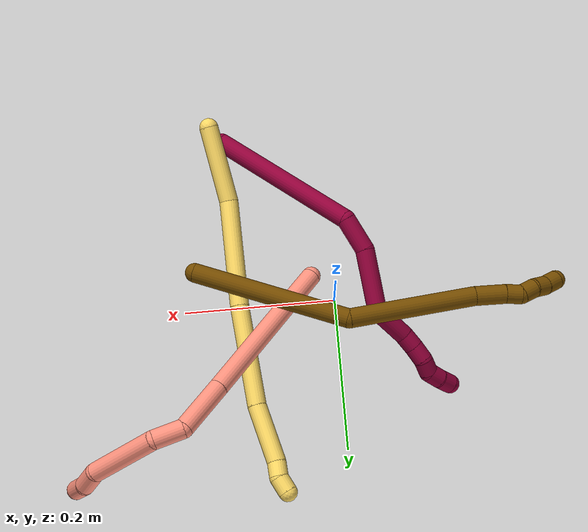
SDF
<sdf version="1.7">
 <world name="default">
  <model name="5">
   <static>0</static>
   <link name="5">
    <collision name="collision-cylinder-e_1_1_4">
     <pose>-0.01694 0.032761 -0.035222 -2.39238 -0.338606 0.820235</pose>
     <geometry><cylinder><radius>0.0125</radius><length>0.101998</length></cylinder></geometry>
     <surface>
      <friction><ode><mu>1.16</mu><mu2>1.16</mu2><slip1>0</slip1><slip2>0</slip2></ode></friction>
      <contact><ode><kp>1e+06</kp><kd>1</kd><max_vel>0</max_vel><min_depth>0.001</min_depth></ode></contact>
     </surface>
    </collision>
    <visual name="visual-cylinder-e_1_1_4">
     <pose>-0.01694 0.032761 -0.035222 -2.39238 -0.338606 0.820235</pose>
     <geometry><cylinder><radius>0.0125</radius><length>0.101998</length></cylinder></geometry>
     <material><ambient>1 0.858824 0.4 1</ambient></material>
    </visual>
    <collision name="collision-cylinder-e_2_4_5">
     <pose>-0.040436 0.119108 -0.117203 -2.28826 -0.09192 0.201661</pose>
     <geometry><cylinder><radius>0.0125</radius><length>0.142839</length></cylinder></geometry>
     <surface>
      <friction><ode><mu>1.16</mu><mu2>1.16</mu2><slip1>0</slip1><slip2>0</slip2></ode></friction>
      <contact><ode><kp>1e+06</kp><kd>1</kd><max_vel>0</max_vel><min_depth>0.001</min_depth></ode></contact>
     </surface>
    </collision>
    <visual name="visual-cylinder-e_2_4_5">
     <pose>-0.040436 0.119108 -0.117203 -2.28826 -0.09192 0.201661</pose>
     <geometry><cylinder><radius>0.0125</radius><length>0.142839</length></cylinder></geometry>
     <material><ambient>1 0.858824 0.4 1</ambient></material>
    </visual>
    <collision name="collision-cylinder-e_3_5_6">
     <pose>-0.056448 0.224978 -0.204864 -2.23465 -0.141493 0.288797</pose>
     <geometry><cylinder><radius>0.0125</radius><length>0.134105</length></cylinder></geometry>
     <surface>
      <friction><ode><mu>1.16</mu><mu2>1.16</mu2><slip1>0</slip1><slip2>0</slip2></ode></friction>
      <contact><ode><kp>1e+06</kp><kd>1</kd><max_vel>0</max_vel><min_depth>0.001</min_depth></ode></contact>
     </surface>
    </collision>
    <visual name="visual-cylinder-e_3_5_6">
     <pose>-0.056448 0.224978 -0.204864 -2.23465 -0.141493 0.288797</pose>
     <geometry><cylinder><radius>0.0125</radius><length>0.134105</length></cylinder></geometry>
     <material><ambient>1 0.858824 0.4 1</ambient></material>
    </visual>
    <collision name="collision-cylinder-e_4_6_7">
     <pose>-0.07549 0.310032 -0.265042 -2.10251 -0.246999 0.427435</pose>
     <geometry><cylinder><radius>0.0125</radius><length>0.078418</length></cylinder></geometry>
     <surface>
      <friction><ode><mu>1.16</mu><mu2>1.16</mu2><slip1>0</slip1><slip2>0</slip2></ode></friction>
      <contact><ode><kp>1e+06</kp><kd>1</kd><max_vel>0</max_vel><min_depth>0.001</min_depth></ode></contact>
     </surface>
    </collision>
    <visual name="visual-cylinder-e_4_6_7">
     <pose>-0.07549 0.310032 -0.265042 -2.10251 -0.246999 0.427435</pose>
     <geometry><cylinder><radius>0.0125</radius><length>0.078418</length></cylinder></geometry>
     <material><ambient>1 0.858824 0.4 1</ambient></material>
    </visual>
    <collision name="collision-cylinder-e_5_7_8">
     <pose>-0.085425 0.351794 -0.289619 -2.10351 -0.033386 0.058429</pose>
     <geometry><cylinder><radius>0.0125</radius><length>0.020888</length></cylinder></geometry>
     <surface>
      <friction><ode><mu>1.16</mu><mu2>1.16</mu2><slip1>0</slip1><slip2>0</slip2></ode></friction>
      <contact><ode><kp>1e+06</kp><kd>1</kd><max_vel>0</max_vel><min_depth>0.001</min_depth></ode></contact>
     </surface>
    </collision>
    <visual name="visual-cylinder-e_5_7_8">
     <pose>-0.085425 0.351794 -0.289619 -2.10351 -0.033386 0.058429</pose>
     <geometry><cylinder><radius>0.0125</radius><length>0.020888</length></cylinder></geometry>
     <material><ambient>1 0.858824 0.4 1</ambient></material>
    </visual>
    <collision name="collision-cylinder-e_6_8_2">
     <pose>-0.090472 0.369715 -0.29898 -1.99752 -0.446634 0.678215</pose>
     <geometry><cylinder><radius>0.0125</radius><length>0.021753</length></cylinder></geometry>
     <surface>
      <friction><ode><mu>1.16</mu><mu2>1.16</mu2><slip1>0</slip1><slip2>0</slip2></ode></friction>
      <contact><ode><kp>1e+06</kp><kd>1</kd><max_vel>0</max_vel><min_depth>0.001</min_depth></ode></contact>
     </surface>
    </collision>
    <visual name="visual-cylinder-e_6_8_2">
     <pose>-0.090472 0.369715 -0.29898 -1.99752 -0.446634 0.678215</pose>
     <geometry><cylinder><radius>0.0125</radius><length>0.021753</length></cylinder></geometry>
     <material><ambient>1 0.858824 0.4 1</ambient></material>
    </visual>
    <collision name="collision-sphere-2">
     <pose>-0.09517 0.378645 -0.303041 0 -0 0</pose>
     <geometry><sphere><radius>0.0125</radius></sphere></geometry>
     <surface>
      <friction><ode><mu>1.16</mu><mu2>1.16</mu2><slip1>0</slip1><slip2>0</slip2></ode></friction>
      <contact><ode><kp>1e+06</kp><kd>1</kd><max_vel>0</max_vel><min_depth>0.001</min_depth></ode></contact>
     </surface>
    </collision>
    <visual name="visual-sphere-2">
     <pose>-0.09517 0.378645 -0.303041 0 -0 0</pose>
     <geometry><sphere><radius>0.0125</radius></sphere></geometry>
     <material><ambient>1 0.858824 0.4 1</ambient></material>
    </visual>
    <collision name="collision-sphere-4">
     <pose>-0.033881 0.065522 -0.070445 0 -0 0</pose>
     <geometry><sphere><radius>0.0125</radius></sphere></geometry>
     <surface>
      <friction><ode><mu>1.16</mu><mu2>1.16</mu2><slip1>0</slip1><slip2>0</slip2></ode></friction>
      <contact><ode><kp>1e+06</kp><kd>1</kd><max_vel>0</max_vel><min_depth>0.001</min_depth></ode></contact>
     </surface>
    </collision>
    <visual name="visual-sphere-4">
     <pose>-0.033881 0.065522 -0.070445 0 -0 0</pose>
     <geometry><sphere><radius>0.0125</radius></sphere></geometry>
     <material><ambient>1 0.858824 0.4 1</ambient></material>
    </visual>
    <collision name="collision-sphere-1">
     <geometry><sphere><radius>0.0125</radius></sphere></geometry>
     <surface>
      <friction><ode><mu>1.16</mu><mu2>1.16</mu2><slip1>0</slip1><slip2>0</slip2></ode></friction>
      <contact><ode><kp>1e+06</kp><kd>1</kd><max_vel>0</max_vel><min_depth>0.001</min_depth></ode></contact>
     </surface>
    </collision>
    <visual name="visual-sphere-1">
     <geometry><sphere><radius>0.0125</radius></sphere></geometry>
     <material><ambient>1 0.858824 0.4 1</ambient></material>
    </visual>
    <collision name="collision-sphere-8">
     <pose>-0.085774 0.360785 -0.29492 0 -0 0</pose>
     <geometry><sphere><radius>0.0125</radius></sphere></geometry>
     <surface>
      <friction><ode><mu>1.16</mu><mu2>1.16</mu2><slip1>0</slip1><slip2>0</slip2></ode></friction>
      <contact><ode><kp>1e+06</kp><kd>1</kd><max_vel>0</max_vel><min_depth>0.001</min_depth></ode></contact>
     </surface>
    </collision>
    <visual name="visual-sphere-8">
     <pose>-0.085774 0.360785 -0.29492 0 -0 0</pose>
     <geometry><sphere><radius>0.0125</radius></sphere></geometry>
     <material><ambient>1 0.858824 0.4 1</ambient></material>
    </visual>
    <collision name="collision-sphere-5">
     <pose>-0.046992 0.172693 -0.163962 0 -0 0</pose>
     <geometry><sphere><radius>0.0125</radius></sphere></geometry>
     <surface>
      <friction><ode><mu>1.16</mu><mu2>1.16</mu2><slip1>0</slip1><slip2>0</slip2></ode></friction>
      <contact><ode><kp>1e+06</kp><kd>1</kd><max_vel>0</max_vel><min_depth>0.001</min_depth></ode></contact>
     </surface>
    </collision>
    <visual name="visual-sphere-5">
     <pose>-0.046992 0.172693 -0.163962 0 -0 0</pose>
     <geometry><sphere><radius>0.0125</radius></sphere></geometry>
     <material><ambient>1 0.858824 0.4 1</ambient></material>
    </visual>
    <collision name="collision-sphere-6">
     <pose>-0.065904 0.277262 -0.245766 0 -0 0</pose>
     <geometry><sphere><radius>0.0125</radius></sphere></geometry>
     <surface>
      <friction><ode><mu>1.16</mu><mu2>1.16</mu2><slip1>0</slip1><slip2>0</slip2></ode></friction>
      <contact><ode><kp>1e+06</kp><kd>1</kd><max_vel>0</max_vel><min_depth>0.001</min_depth></ode></contact>
     </surface>
    </collision>
    <visual name="visual-sphere-6">
     <pose>-0.065904 0.277262 -0.245766 0 -0 0</pose>
     <geometry><sphere><radius>0.0125</radius></sphere></geometry>
     <material><ambient>1 0.858824 0.4 1</ambient></material>
    </visual>
    <collision name="collision-sphere-7">
     <pose>-0.085077 0.342802 -0.284318 0 -0 0</pose>
     <geometry><sphere><radius>0.0125</radius></sphere></geometry>
     <surface>
      <friction><ode><mu>1.16</mu><mu2>1.16</mu2><slip1>0</slip1><slip2>0</slip2></ode></friction>
      <contact><ode><kp>1e+06</kp><kd>1</kd><max_vel>0</max_vel><min_depth>0.001</min_depth></ode></contact>
     </surface>
    </collision>
    <visual name="visual-sphere-7">
     <pose>-0.085077 0.342802 -0.284318 0 -0 0</pose>
     <geometry><sphere><radius>0.0125</radius></sphere></geometry>
     <material><ambient>1 0.858824 0.4 1</ambient></material>
    </visual>
    <inertial>
     <pose>-0.049492 0.180456 -0.162288 0 -0 0</pose>
     <mass>0.5</mass>
     <inertia>
      <ixx>0.000721</ixx>
      <ixy>0</ixy>
      <ixz>0</ixz>
      <iyy>-0.0001</iyy>
      <iyz>0</iyz>
      <izz>-0.000375</izz>
     </inertia>
    </inertial>
   </link>
   <pose>0.146261 -0.240816 0.042338 0.84985 -0.553889 -0.127405</pose>
  </model>
  <model name="8">
   <static>0</static>
   <link name="8">
    <collision name="collision-cylinder-e_1_1_4">
     <pose>-0.048755 0.095685 -0.025963 -1.83576 -0.457029 0.590416</pose>
     <geometry><cylinder><radius>0.0125</radius><length>0.220969</length></cylinder></geometry>
     <surface>
      <friction><ode><mu>1.16</mu><mu2>1.16</mu2><slip1>0</slip1><slip2>0</slip2></ode></friction>
      <contact><ode><kp>1e+06</kp><kd>1</kd><max_vel>0</max_vel><min_depth>0.001</min_depth></ode></contact>
     </surface>
    </collision>
    <visual name="visual-cylinder-e_1_1_4">
     <pose>-0.048755 0.095685 -0.025963 -1.83576 -0.457029 0.590416</pose>
     <geometry><cylinder><radius>0.0125</radius><length>0.220969</length></cylinder></geometry>
     <material><ambient>0.584314 0 0.227451 1</ambient></material>
    </visual>
    <collision name="collision-cylinder-e_2_4_5">
     <pose>-0.102914 0.205732 -0.069167 -2.44707 -0.236325 0.633906</pose>
     <geometry><cylinder><radius>0.0125</radius><length>0.046161</length></cylinder></geometry>
     <surface>
      <friction><ode><mu>1.16</mu><mu2>1.16</mu2><slip1>0</slip1><slip2>0</slip2></ode></friction>
      <contact><ode><kp>1e+06</kp><kd>1</kd><max_vel>0</max_vel><min_depth>0.001</min_depth></ode></contact>
     </surface>
    </collision>
    <visual name="visual-cylinder-e_2_4_5">
     <pose>-0.102914 0.205732 -0.069167 -2.44707 -0.236325 0.633906</pose>
     <geometry><cylinder><radius>0.0125</radius><length>0.046161</length></cylinder></geometry>
     <material><ambient>0.584314 0 0.227451 1</ambient></material>
    </visual>
    <collision name="collision-cylinder-e_3_5_6">
     <pose>-0.10416 0.242481 -0.119443 -2.54598 0.10382 -0.33537</pose>
     <geometry><cylinder><radius>0.0125</radius><length>0.080243</length></cylinder></geometry>
     <surface>
      <friction><ode><mu>1.16</mu><mu2>1.16</mu2><slip1>0</slip1><slip2>0</slip2></ode></friction>
      <contact><ode><kp>1e+06</kp><kd>1</kd><max_vel>0</max_vel><min_depth>0.001</min_depth></ode></contact>
     </surface>
    </collision>
    <visual name="visual-cylinder-e_3_5_6">
     <pose>-0.10416 0.242481 -0.119443 -2.54598 0.10382 -0.33537</pose>
     <geometry><cylinder><radius>0.0125</radius><length>0.080243</length></cylinder></geometry>
     <material><ambient>0.584314 0 0.227451 1</ambient></material>
    </visual>
    <collision name="collision-cylinder-e_4_6_7">
     <pose>-0.113793 0.271518 -0.172381 -2.81919 -0.581382 2.14584</pose>
     <geometry><cylinder><radius>0.0125</radius><length>0.050224</length></cylinder></geometry>
     <surface>
      <friction><ode><mu>1.16</mu><mu2>1.16</mu2><slip1>0</slip1><slip2>0</slip2></ode></friction>
      <contact><ode><kp>1e+06</kp><kd>1</kd><max_vel>0</max_vel><min_depth>0.001</min_depth></ode></contact>
     </surface>
    </collision>
    <visual name="visual-cylinder-e_4_6_7">
     <pose>-0.113793 0.271518 -0.172381 -2.81919 -0.581382 2.14584</pose>
     <geometry><cylinder><radius>0.0125</radius><length>0.050224</length></cylinder></geometry>
     <material><ambient>0.584314 0 0.227451 1</ambient></material>
    </visual>
    <collision name="collision-cylinder-e_5_7_8">
     <pose>-0.131792 0.282702 -0.200354 -2.62958 -0.426712 1.38281</pose>
     <geometry><cylinder><radius>0.0125</radius><length>0.020332</length></cylinder></geometry>
     <surface>
      <friction><ode><mu>1.16</mu><mu2>1.16</mu2><slip1>0</slip1><slip2>0</slip2></ode></friction>
      <contact><ode><kp>1e+06</kp><kd>1</kd><max_vel>0</max_vel><min_depth>0.001</min_depth></ode></contact>
     </surface>
    </collision>
    <visual name="visual-cylinder-e_5_7_8">
     <pose>-0.131792 0.282702 -0.200354 -2.62958 -0.426712 1.38281</pose>
     <geometry><cylinder><radius>0.0125</radius><length>0.020332</length></cylinder></geometry>
     <material><ambient>0.584314 0 0.227451 1</ambient></material>
    </visual>
    <collision name="collision-cylinder-e_6_8_9">
     <pose>-0.139773 0.292646 -0.21716 -2.58721 -0.3519 1.11702</pose>
     <geometry><cylinder><radius>0.0125</radius><length>0.021898</length></cylinder></geometry>
     <surface>
      <friction><ode><mu>1.16</mu><mu2>1.16</mu2><slip1>0</slip1><slip2>0</slip2></ode></friction>
      <contact><ode><kp>1e+06</kp><kd>1</kd><max_vel>0</max_vel><min_depth>0.001</min_depth></ode></contact>
     </surface>
    </collision>
    <visual name="visual-cylinder-e_6_8_9">
     <pose>-0.139773 0.292646 -0.21716 -2.58721 -0.3519 1.11702</pose>
     <geometry><cylinder><radius>0.0125</radius><length>0.021898</length></cylinder></geometry>
     <material><ambient>0.584314 0 0.227451 1</ambient></material>
    </visual>
    <collision name="collision-cylinder-e_7_9_10">
     <pose>-0.145697 0.300114 -0.235515 -2.93088 -0.21523 1.59219</pose>
     <geometry><cylinder><radius>0.0125</radius><length>0.020131</length></cylinder></geometry>
     <surface>
      <friction><ode><mu>1.16</mu><mu2>1.16</mu2><slip1>0</slip1><slip2>0</slip2></ode></friction>
      <contact><ode><kp>1e+06</kp><kd>1</kd><max_vel>0</max_vel><min_depth>0.001</min_depth></ode></contact>
     </surface>
    </collision>
    <visual name="visual-cylinder-e_7_9_10">
     <pose>-0.145697 0.300114 -0.235515 -2.93088 -0.21523 1.59219</pose>
     <geometry><cylinder><radius>0.0125</radius><length>0.020131</length></cylinder></geometry>
     <material><ambient>0.584314 0 0.227451 1</ambient></material>
    </visual>
    <collision name="collision-cylinder-e_8_10_11">
     <pose>-0.154707 0.303452 -0.252318 -2.96506 -0.754263 2.70197</pose>
     <geometry><cylinder><radius>0.0125</radius><length>0.020038</length></cylinder></geometry>
     <surface>
      <friction><ode><mu>1.16</mu><mu2>1.16</mu2><slip1>0</slip1><slip2>0</slip2></ode></friction>
      <contact><ode><kp>1e+06</kp><kd>1</kd><max_vel>0</max_vel><min_depth>0.001</min_depth></ode></contact>
     </surface>
    </collision>
    <visual name="visual-cylinder-e_8_10_11">
     <pose>-0.154707 0.303452 -0.252318 -2.96506 -0.754263 2.70197</pose>
     <geometry><cylinder><radius>0.0125</radius><length>0.020038</length></cylinder></geometry>
     <material><ambient>0.584314 0 0.227451 1</ambient></material>
    </visual>
    <collision name="collision-cylinder-e_9_11_2">
     <pose>-0.168643 0.304435 -0.266569 3.09917 -0.785879 -3.03932</pose>
     <geometry><cylinder><radius>0.0125</radius><length>0.020004</length></cylinder></geometry>
     <surface>
      <friction><ode><mu>1.16</mu><mu2>1.16</mu2><slip1>0</slip1><slip2>0</slip2></ode></friction>
      <contact><ode><kp>1e+06</kp><kd>1</kd><max_vel>0</max_vel><min_depth>0.001</min_depth></ode></contact>
     </surface>
    </collision>
    <visual name="visual-cylinder-e_9_11_2">
     <pose>-0.168643 0.304435 -0.266569 3.09917 -0.785879 -3.03932</pose>
     <geometry><cylinder><radius>0.0125</radius><length>0.020004</length></cylinder></geometry>
     <material><ambient>0.584314 0 0.227451 1</ambient></material>
    </visual>
    <collision name="collision-sphere-2">
     <pose>-0.175719 0.304135 -0.273632 0 -0 0</pose>
     <geometry><sphere><radius>0.0125</radius></sphere></geometry>
     <surface>
      <friction><ode><mu>1.16</mu><mu2>1.16</mu2><slip1>0</slip1><slip2>0</slip2></ode></friction>
      <contact><ode><kp>1e+06</kp><kd>1</kd><max_vel>0</max_vel><min_depth>0.001</min_depth></ode></contact>
     </surface>
    </collision>
    <visual name="visual-sphere-2">
     <pose>-0.175719 0.304135 -0.273632 0 -0 0</pose>
     <geometry><sphere><radius>0.0125</radius></sphere></geometry>
     <material><ambient>0.584314 0 0.227451 1</ambient></material>
    </visual>
    <collision name="collision-sphere-11">
     <pose>-0.161567 0.304735 -0.259506 0 -0 0</pose>
     <geometry><sphere><radius>0.0125</radius></sphere></geometry>
     <surface>
      <friction><ode><mu>1.16</mu><mu2>1.16</mu2><slip1>0</slip1><slip2>0</slip2></ode></friction>
      <contact><ode><kp>1e+06</kp><kd>1</kd><max_vel>0</max_vel><min_depth>0.001</min_depth></ode></contact>
     </surface>
    </collision>
    <visual name="visual-sphere-11">
     <pose>-0.161567 0.304735 -0.259506 0 -0 0</pose>
     <geometry><sphere><radius>0.0125</radius></sphere></geometry>
     <material><ambient>0.584314 0 0.227451 1</ambient></material>
    </visual>
    <collision name="collision-sphere-10">
     <pose>-0.147846 0.30217 -0.24513 0 -0 0</pose>
     <geometry><sphere><radius>0.0125</radius></sphere></geometry>
     <surface>
      <friction><ode><mu>1.16</mu><mu2>1.16</mu2><slip1>0</slip1><slip2>0</slip2></ode></friction>
      <contact><ode><kp>1e+06</kp><kd>1</kd><max_vel>0</max_vel><min_depth>0.001</min_depth></ode></contact>
     </surface>
    </collision>
    <visual name="visual-sphere-10">
     <pose>-0.147846 0.30217 -0.24513 0 -0 0</pose>
     <geometry><sphere><radius>0.0125</radius></sphere></geometry>
     <material><ambient>0.584314 0 0.227451 1</ambient></material>
    </visual>
    <collision name="collision-sphere-9">
     <pose>-0.143547 0.298057 -0.225899 0 -0 0</pose>
     <geometry><sphere><radius>0.0125</radius></sphere></geometry>
     <surface>
      <friction><ode><mu>1.16</mu><mu2>1.16</mu2><slip1>0</slip1><slip2>0</slip2></ode></friction>
      <contact><ode><kp>1e+06</kp><kd>1</kd><max_vel>0</max_vel><min_depth>0.001</min_depth></ode></contact>
     </surface>
    </collision>
    <visual name="visual-sphere-9">
     <pose>-0.143547 0.298057 -0.225899 0 -0 0</pose>
     <geometry><sphere><radius>0.0125</radius></sphere></geometry>
     <material><ambient>0.584314 0 0.227451 1</ambient></material>
    </visual>
    <collision name="collision-sphere-4">
     <pose>-0.09751 0.191371 -0.051926 0 -0 0</pose>
     <geometry><sphere><radius>0.0125</radius></sphere></geometry>
     <surface>
      <friction><ode><mu>1.16</mu><mu2>1.16</mu2><slip1>0</slip1><slip2>0</slip2></ode></friction>
      <contact><ode><kp>1e+06</kp><kd>1</kd><max_vel>0</max_vel><min_depth>0.001</min_depth></ode></contact>
     </surface>
    </collision>
    <visual name="visual-sphere-4">
     <pose>-0.09751 0.191371 -0.051926 0 -0 0</pose>
     <geometry><sphere><radius>0.0125</radius></sphere></geometry>
     <material><ambient>0.584314 0 0.227451 1</ambient></material>
    </visual>
    <collision name="collision-sphere-1">
     <geometry><sphere><radius>0.0125</radius></sphere></geometry>
     <surface>
      <friction><ode><mu>1.16</mu><mu2>1.16</mu2><slip1>0</slip1><slip2>0</slip2></ode></friction>
      <contact><ode><kp>1e+06</kp><kd>1</kd><max_vel>0</max_vel><min_depth>0.001</min_depth></ode></contact>
     </surface>
    </collision>
    <visual name="visual-sphere-1">
     <geometry><sphere><radius>0.0125</radius></sphere></geometry>
     <material><ambient>0.584314 0 0.227451 1</ambient></material>
    </visual>
    <collision name="collision-sphere-8">
     <pose>-0.135999 0.287236 -0.208422 0 -0 0</pose>
     <geometry><sphere><radius>0.0125</radius></sphere></geometry>
     <surface>
      <friction><ode><mu>1.16</mu><mu2>1.16</mu2><slip1>0</slip1><slip2>0</slip2></ode></friction>
      <contact><ode><kp>1e+06</kp><kd>1</kd><max_vel>0</max_vel><min_depth>0.001</min_depth></ode></contact>
     </surface>
    </collision>
    <visual name="visual-sphere-8">
     <pose>-0.135999 0.287236 -0.208422 0 -0 0</pose>
     <geometry><sphere><radius>0.0125</radius></sphere></geometry>
     <material><ambient>0.584314 0 0.227451 1</ambient></material>
    </visual>
    <collision name="collision-sphere-5">
     <pose>-0.108318 0.220093 -0.086409 0 -0 0</pose>
     <geometry><sphere><radius>0.0125</radius></sphere></geometry>
     <surface>
      <friction><ode><mu>1.16</mu><mu2>1.16</mu2><slip1>0</slip1><slip2>0</slip2></ode></friction>
      <contact><ode><kp>1e+06</kp><kd>1</kd><max_vel>0</max_vel><min_depth>0.001</min_depth></ode></contact>
     </surface>
    </collision>
    <visual name="visual-sphere-5">
     <pose>-0.108318 0.220093 -0.086409 0 -0 0</pose>
     <geometry><sphere><radius>0.0125</radius></sphere></geometry>
     <material><ambient>0.584314 0 0.227451 1</ambient></material>
    </visual>
    <collision name="collision-sphere-6">
     <pose>-0.100002 0.264869 -0.152476 0 -0 0</pose>
     <geometry><sphere><radius>0.0125</radius></sphere></geometry>
     <surface>
      <friction><ode><mu>1.16</mu><mu2>1.16</mu2><slip1>0</slip1><slip2>0</slip2></ode></friction>
      <contact><ode><kp>1e+06</kp><kd>1</kd><max_vel>0</max_vel><min_depth>0.001</min_depth></ode></contact>
     </surface>
    </collision>
    <visual name="visual-sphere-6">
     <pose>-0.100002 0.264869 -0.152476 0 -0 0</pose>
     <geometry><sphere><radius>0.0125</radius></sphere></geometry>
     <material><ambient>0.584314 0 0.227451 1</ambient></material>
    </visual>
    <collision name="collision-sphere-7">
     <pose>-0.127584 0.278168 -0.192287 0 -0 0</pose>
     <geometry><sphere><radius>0.0125</radius></sphere></geometry>
     <surface>
      <friction><ode><mu>1.16</mu><mu2>1.16</mu2><slip1>0</slip1><slip2>0</slip2></ode></friction>
      <contact><ode><kp>1e+06</kp><kd>1</kd><max_vel>0</max_vel><min_depth>0.001</min_depth></ode></contact>
     </surface>
    </collision>
    <visual name="visual-sphere-7">
     <pose>-0.127584 0.278168 -0.192287 0 -0 0</pose>
     <geometry><sphere><radius>0.0125</radius></sphere></geometry>
     <material><ambient>0.584314 0 0.227451 1</ambient></material>
    </visual>
    <inertial>
     <pose>-0.089488 0.188206 -0.102261 0 -0 0</pose>
     <mass>0.5</mass>
     <inertia>
      <ixx>0.001165</ixx>
      <ixy>0</ixy>
      <ixz>0</ixz>
      <iyy>0.000469</iyy>
      <iyz>0</iyz>
      <izz>-0.000436</izz>
     </inertia>
    </inertial>
   </link>
   <pose>0.131492 -0.225615 0.011492 0.836753 -0.20598 0.243386</pose>
  </model>
  <model name="12">
   <static>0</static>
   <link name="12">
    <collision name="collision-cylinder-e_1_1_4">
     <pose>-0.033999 0.011584 -0.099044 -3.02516 -0.32859 2.46552</pose>
     <geometry><cylinder><radius>0.0125</radius><length>0.210712</length></cylinder></geometry>
     <surface>
      <friction><ode><mu>1.16</mu><mu2>1.16</mu2><slip1>0</slip1><slip2>0</slip2></ode></friction>
      <contact><ode><kp>1e+06</kp><kd>1</kd><max_vel>0</max_vel><min_depth>0.001</min_depth></ode></contact>
     </surface>
    </collision>
    <visual name="visual-cylinder-e_1_1_4">
     <pose>-0.033999 0.011584 -0.099044 -3.02516 -0.32859 2.46552</pose>
     <geometry><cylinder><radius>0.0125</radius><length>0.210712</length></cylinder></geometry>
     <material><ambient>0.466667 0.301961 0 1</ambient></material>
    </visual>
    <collision name="collision-cylinder-e_2_4_5">
     <pose>-0.135324 0.02106 -0.247347 3.09882 -0.938705 -3.0573</pose>
     <geometry><cylinder><radius>0.0125</radius><length>0.166895</length></cylinder></geometry>
     <surface>
      <friction><ode><mu>1.16</mu><mu2>1.16</mu2><slip1>0</slip1><slip2>0</slip2></ode></friction>
      <contact><ode><kp>1e+06</kp><kd>1</kd><max_vel>0</max_vel><min_depth>0.001</min_depth></ode></contact>
     </surface>
    </collision>
    <visual name="visual-cylinder-e_2_4_5">
     <pose>-0.135324 0.02106 -0.247347 3.09882 -0.938705 -3.0573</pose>
     <geometry><cylinder><radius>0.0125</radius><length>0.166895</length></cylinder></geometry>
     <material><ambient>0.466667 0.301961 0 1</ambient></material>
    </visual>
    <collision name="collision-cylinder-e_3_5_6">
     <pose>-0.217176 0.019073 -0.31068 -3.13297 -0.801212 3.12124</pose>
     <geometry><cylinder><radius>0.0125</radius><length>0.040453</length></cylinder></geometry>
     <surface>
      <friction><ode><mu>1.16</mu><mu2>1.16</mu2><slip1>0</slip1><slip2>0</slip2></ode></friction>
      <contact><ode><kp>1e+06</kp><kd>1</kd><max_vel>0</max_vel><min_depth>0.001</min_depth></ode></contact>
     </surface>
    </collision>
    <visual name="visual-cylinder-e_3_5_6">
     <pose>-0.217176 0.019073 -0.31068 -3.13297 -0.801212 3.12124</pose>
     <geometry><cylinder><radius>0.0125</radius><length>0.040453</length></cylinder></geometry>
     <material><ambient>0.466667 0.301961 0 1</ambient></material>
    </visual>
    <collision name="collision-cylinder-e_4_6_7">
     <pose>-0.238473 0.018944 -0.332605 3.10964 -0.711355 -3.05563</pose>
     <geometry><cylinder><radius>0.0125</radius><length>0.020742</length></cylinder></geometry>
     <surface>
      <friction><ode><mu>1.16</mu><mu2>1.16</mu2><slip1>0</slip1><slip2>0</slip2></ode></friction>
      <contact><ode><kp>1e+06</kp><kd>1</kd><max_vel>0</max_vel><min_depth>0.001</min_depth></ode></contact>
     </surface>
    </collision>
    <visual name="visual-cylinder-e_4_6_7">
     <pose>-0.238473 0.018944 -0.332605 3.10964 -0.711355 -3.05563</pose>
     <geometry><cylinder><radius>0.0125</radius><length>0.020742</length></cylinder></geometry>
     <material><ambient>0.466667 0.301961 0 1</ambient></material>
    </visual>
    <collision name="collision-cylinder-e_5_7_8">
     <pose>-0.255004 0.017679 -0.343447 2.81478 -1.25796 -2.69589</pose>
     <geometry><cylinder><radius>0.0125</radius><length>0.020516</length></cylinder></geometry>
     <surface>
      <friction><ode><mu>1.16</mu><mu2>1.16</mu2><slip1>0</slip1><slip2>0</slip2></ode></friction>
      <contact><ode><kp>1e+06</kp><kd>1</kd><max_vel>0</max_vel><min_depth>0.001</min_depth></ode></contact>
     </surface>
    </collision>
    <visual name="visual-cylinder-e_5_7_8">
     <pose>-0.255004 0.017679 -0.343447 2.81478 -1.25796 -2.69589</pose>
     <geometry><cylinder><radius>0.0125</radius><length>0.020516</length></cylinder></geometry>
     <material><ambient>0.466667 0.301961 0 1</ambient></material>
    </visual>
    <collision name="collision-cylinder-e_6_8_9">
     <pose>-0.273504 0.012795 -0.349905 2.30145 -1.03428 -1.81016</pose>
     <geometry><cylinder><radius>0.0125</radius><length>0.020336</length></cylinder></geometry>
     <surface>
      <friction><ode><mu>1.16</mu><mu2>1.16</mu2><slip1>0</slip1><slip2>0</slip2></ode></friction>
      <contact><ode><kp>1e+06</kp><kd>1</kd><max_vel>0</max_vel><min_depth>0.001</min_depth></ode></contact>
     </surface>
    </collision>
    <visual name="visual-cylinder-e_6_8_9">
     <pose>-0.273504 0.012795 -0.349905 2.30145 -1.03428 -1.81016</pose>
     <geometry><cylinder><radius>0.0125</radius><length>0.020336</length></cylinder></geometry>
     <material><ambient>0.466667 0.301961 0 1</ambient></material>
    </visual>
    <collision name="collision-cylinder-e_7_9_2">
     <pose>-0.291859 0.006576 -0.35572 2.35582 -1.23837 -2.08817</pose>
     <geometry><cylinder><radius>0.0125</radius><length>0.020345</length></cylinder></geometry>
     <surface>
      <friction><ode><mu>1.16</mu><mu2>1.16</mu2><slip1>0</slip1><slip2>0</slip2></ode></friction>
      <contact><ode><kp>1e+06</kp><kd>1</kd><max_vel>0</max_vel><min_depth>0.001</min_depth></ode></contact>
     </surface>
    </collision>
    <visual name="visual-cylinder-e_7_9_2">
     <pose>-0.291859 0.006576 -0.35572 2.35582 -1.23837 -2.08817</pose>
     <geometry><cylinder><radius>0.0125</radius><length>0.020345</length></cylinder></geometry>
     <material><ambient>0.466667 0.301961 0 1</ambient></material>
    </visual>
    <collision name="collision-sphere-2">
     <pose>-0.301474 0.004228 -0.358067 0 -0 0</pose>
     <geometry><sphere><radius>0.0125</radius></sphere></geometry>
     <surface>
      <friction><ode><mu>1.16</mu><mu2>1.16</mu2><slip1>0</slip1><slip2>0</slip2></ode></friction>
      <contact><ode><kp>1e+06</kp><kd>1</kd><max_vel>0</max_vel><min_depth>0.001</min_depth></ode></contact>
     </surface>
    </collision>
    <visual name="visual-sphere-2">
     <pose>-0.301474 0.004228 -0.358067 0 -0 0</pose>
     <geometry><sphere><radius>0.0125</radius></sphere></geometry>
     <material><ambient>0.466667 0.301961 0 1</ambient></material>
    </visual>
    <collision name="collision-sphere-9">
     <pose>-0.282243 0.008924 -0.353374 0 -0 0</pose>
     <geometry><sphere><radius>0.0125</radius></sphere></geometry>
     <surface>
      <friction><ode><mu>1.16</mu><mu2>1.16</mu2><slip1>0</slip1><slip2>0</slip2></ode></friction>
      <contact><ode><kp>1e+06</kp><kd>1</kd><max_vel>0</max_vel><min_depth>0.001</min_depth></ode></contact>
     </surface>
    </collision>
    <visual name="visual-sphere-9">
     <pose>-0.282243 0.008924 -0.353374 0 -0 0</pose>
     <geometry><sphere><radius>0.0125</radius></sphere></geometry>
     <material><ambient>0.466667 0.301961 0 1</ambient></material>
    </visual>
    <collision name="collision-sphere-4">
     <pose>-0.067999 0.023168 -0.198089 0 -0 0</pose>
     <geometry><sphere><radius>0.0125</radius></sphere></geometry>
     <surface>
      <friction><ode><mu>1.16</mu><mu2>1.16</mu2><slip1>0</slip1><slip2>0</slip2></ode></friction>
      <contact><ode><kp>1e+06</kp><kd>1</kd><max_vel>0</max_vel><min_depth>0.001</min_depth></ode></contact>
     </surface>
    </collision>
    <visual name="visual-sphere-4">
     <pose>-0.067999 0.023168 -0.198089 0 -0 0</pose>
     <geometry><sphere><radius>0.0125</radius></sphere></geometry>
     <material><ambient>0.466667 0.301961 0 1</ambient></material>
    </visual>
    <collision name="collision-sphere-1">
     <geometry><sphere><radius>0.0125</radius></sphere></geometry>
     <surface>
      <friction><ode><mu>1.16</mu><mu2>1.16</mu2><slip1>0</slip1><slip2>0</slip2></ode></friction>
      <contact><ode><kp>1e+06</kp><kd>1</kd><max_vel>0</max_vel><min_depth>0.001</min_depth></ode></contact>
     </surface>
    </collision>
    <visual name="visual-sphere-1">
     <geometry><sphere><radius>0.0125</radius></sphere></geometry>
     <material><ambient>0.466667 0.301961 0 1</ambient></material>
    </visual>
    <collision name="collision-sphere-8">
     <pose>-0.264764 0.016666 -0.346437 0 -0 0</pose>
     <geometry><sphere><radius>0.0125</radius></sphere></geometry>
     <surface>
      <friction><ode><mu>1.16</mu><mu2>1.16</mu2><slip1>0</slip1><slip2>0</slip2></ode></friction>
      <contact><ode><kp>1e+06</kp><kd>1</kd><max_vel>0</max_vel><min_depth>0.001</min_depth></ode></contact>
     </surface>
    </collision>
    <visual name="visual-sphere-8">
     <pose>-0.264764 0.016666 -0.346437 0 -0 0</pose>
     <geometry><sphere><radius>0.0125</radius></sphere></geometry>
     <material><ambient>0.466667 0.301961 0 1</ambient></material>
    </visual>
    <collision name="collision-sphere-5">
     <pose>-0.202649 0.018952 -0.296606 0 -0 0</pose>
     <geometry><sphere><radius>0.0125</radius></sphere></geometry>
     <surface>
      <friction><ode><mu>1.16</mu><mu2>1.16</mu2><slip1>0</slip1><slip2>0</slip2></ode></friction>
      <contact><ode><kp>1e+06</kp><kd>1</kd><max_vel>0</max_vel><min_depth>0.001</min_depth></ode></contact>
     </surface>
    </collision>
    <visual name="visual-sphere-5">
     <pose>-0.202649 0.018952 -0.296606 0 -0 0</pose>
     <geometry><sphere><radius>0.0125</radius></sphere></geometry>
     <material><ambient>0.466667 0.301961 0 1</ambient></material>
    </visual>
    <collision name="collision-sphere-6">
     <pose>-0.231702 0.019195 -0.324754 0 -0 0</pose>
     <geometry><sphere><radius>0.0125</radius></sphere></geometry>
     <surface>
      <friction><ode><mu>1.16</mu><mu2>1.16</mu2><slip1>0</slip1><slip2>0</slip2></ode></friction>
      <contact><ode><kp>1e+06</kp><kd>1</kd><max_vel>0</max_vel><min_depth>0.001</min_depth></ode></contact>
     </surface>
    </collision>
    <visual name="visual-sphere-6">
     <pose>-0.231702 0.019195 -0.324754 0 -0 0</pose>
     <geometry><sphere><radius>0.0125</radius></sphere></geometry>
     <material><ambient>0.466667 0.301961 0 1</ambient></material>
    </visual>
    <collision name="collision-sphere-7">
     <pose>-0.245244 0.018693 -0.340457 0 -0 0</pose>
     <geometry><sphere><radius>0.0125</radius></sphere></geometry>
     <surface>
      <friction><ode><mu>1.16</mu><mu2>1.16</mu2><slip1>0</slip1><slip2>0</slip2></ode></friction>
      <contact><ode><kp>1e+06</kp><kd>1</kd><max_vel>0</max_vel><min_depth>0.001</min_depth></ode></contact>
     </surface>
    </collision>
    <visual name="visual-sphere-7">
     <pose>-0.245244 0.018693 -0.340457 0 -0 0</pose>
     <geometry><sphere><radius>0.0125</radius></sphere></geometry>
     <material><ambient>0.466667 0.301961 0 1</ambient></material>
    </visual>
    <inertial>
     <pose>-0.120425 0.015754 -0.206034 0 -0 0</pose>
     <mass>0.5</mass>
     <inertia>
      <ixx>-0.000398</ixx>
      <ixy>0</ixy>
      <ixz>0</ixz>
      <iyy>0.001481</iyy>
      <iyz>0</iyz>
      <izz>0.000479</izz>
     </inertia>
    </inertial>
   </link>
   <pose>0.177076 -0.040268 0.094997 1.78668 -0.355431 0.743048</pose>
  </model>
  <model name="16">
   <static>0</static>
   <link name="16">
    <collision name="collision-cylinder-e_1_1_4">
     <pose>0.033367 0.004032 0.102575 -0.039292 0.314267 -0.006226</pose>
     <geometry><cylinder><radius>0.0125</radius><length>0.215881</length></cylinder></geometry>
     <surface>
      <friction><ode><mu>1.16</mu><mu2>1.16</mu2><slip1>0</slip1><slip2>0</slip2></ode></friction>
      <contact><ode><kp>1e+06</kp><kd>1</kd><max_vel>0</max_vel><min_depth>0.001</min_depth></ode></contact>
     </surface>
    </collision>
    <visual name="visual-cylinder-e_1_1_4">
     <pose>0.033367 0.004032 0.102575 -0.039292 0.314267 -0.006226</pose>
     <geometry><cylinder><radius>0.0125</radius><length>0.215881</length></cylinder></geometry>
     <material><ambient>1 0.576471 0.494118 1</ambient></material>
    </visual>
    <collision name="collision-cylinder-e_2_4_5">
     <pose>0.078499 0.009491 0.240359 -0.040493 0.322269 -0.006583</pose>
     <geometry><cylinder><radius>0.0125</radius><length>0.074301</length></cylinder></geometry>
     <surface>
      <friction><ode><mu>1.16</mu><mu2>1.16</mu2><slip1>0</slip1><slip2>0</slip2></ode></friction>
      <contact><ode><kp>1e+06</kp><kd>1</kd><max_vel>0</max_vel><min_depth>0.001</min_depth></ode></contact>
     </surface>
    </collision>
    <visual name="visual-cylinder-e_2_4_5">
     <pose>0.078499 0.009491 0.240359 -0.040493 0.322269 -0.006583</pose>
     <geometry><cylinder><radius>0.0125</radius><length>0.074301</length></cylinder></geometry>
     <material><ambient>1 0.576471 0.494118 1</ambient></material>
    </visual>
    <collision name="collision-cylinder-e_3_5_6">
     <pose>0.105522 0.017034 0.286802 -0.49853 0.87309 -0.23643</pose>
     <geometry><cylinder><radius>0.0125</radius><length>0.039818</length></cylinder></geometry>
     <surface>
      <friction><ode><mu>1.16</mu><mu2>1.16</mu2><slip1>0</slip1><slip2>0</slip2></ode></friction>
      <contact><ode><kp>1e+06</kp><kd>1</kd><max_vel>0</max_vel><min_depth>0.001</min_depth></ode></contact>
     </surface>
    </collision>
    <visual name="visual-cylinder-e_3_5_6">
     <pose>0.105522 0.017034 0.286802 -0.49853 0.87309 -0.23643</pose>
     <geometry><cylinder><radius>0.0125</radius><length>0.039818</length></cylinder></geometry>
     <material><ambient>1 0.576471 0.494118 1</ambient></material>
    </visual>
    <collision name="collision-cylinder-e_4_6_7">
     <pose>0.148062 0.061072 0.311653 -1.22605 0.595194 -0.424978</pose>
     <geometry><cylinder><radius>0.0125</radius><length>0.097323</length></cylinder></geometry>
     <surface>
      <friction><ode><mu>1.16</mu><mu2>1.16</mu2><slip1>0</slip1><slip2>0</slip2></ode></friction>
      <contact><ode><kp>1e+06</kp><kd>1</kd><max_vel>0</max_vel><min_depth>0.001</min_depth></ode></contact>
     </surface>
    </collision>
    <visual name="visual-cylinder-e_4_6_7">
     <pose>0.148062 0.061072 0.311653 -1.22605 0.595194 -0.424978</pose>
     <geometry><cylinder><radius>0.0125</radius><length>0.097323</length></cylinder></geometry>
     <material><ambient>1 0.576471 0.494118 1</ambient></material>
    </visual>
    <collision name="collision-cylinder-e_5_7_8">
     <pose>0.179103 0.116617 0.32682 -1.48311 0.209343 -0.191858</pose>
     <geometry><cylinder><radius>0.0125</radius><length>0.03617</length></cylinder></geometry>
     <surface>
      <friction><ode><mu>1.16</mu><mu2>1.16</mu2><slip1>0</slip1><slip2>0</slip2></ode></friction>
      <contact><ode><kp>1e+06</kp><kd>1</kd><max_vel>0</max_vel><min_depth>0.001</min_depth></ode></contact>
     </surface>
    </collision>
    <visual name="visual-cylinder-e_5_7_8">
     <pose>0.179103 0.116617 0.32682 -1.48311 0.209343 -0.191858</pose>
     <geometry><cylinder><radius>0.0125</radius><length>0.03617</length></cylinder></geometry>
     <material><ambient>1 0.576471 0.494118 1</ambient></material>
    </visual>
    <collision name="collision-cylinder-e_6_8_2">
     <pose>0.187579 0.15142 0.324398 -1.79796 0.26139 -0.327627</pose>
     <geometry><cylinder><radius>0.0125</radius><length>0.036507</length></cylinder></geometry>
     <surface>
      <friction><ode><mu>1.16</mu><mu2>1.16</mu2><slip1>0</slip1><slip2>0</slip2></ode></friction>
      <contact><ode><kp>1e+06</kp><kd>1</kd><max_vel>0</max_vel><min_depth>0.001</min_depth></ode></contact>
     </surface>
    </collision>
    <visual name="visual-cylinder-e_6_8_2">
     <pose>0.187579 0.15142 0.324398 -1.79796 0.26139 -0.327627</pose>
     <geometry><cylinder><radius>0.0125</radius><length>0.036507</length></cylinder></geometry>
     <material><ambient>1 0.576471 0.494118 1</ambient></material>
    </visual>
    <collision name="collision-sphere-2">
     <pose>0.192296 0.1686 0.320427 0 -0 0</pose>
     <geometry><sphere><radius>0.0125</radius></sphere></geometry>
     <surface>
      <friction><ode><mu>1.16</mu><mu2>1.16</mu2><slip1>0</slip1><slip2>0</slip2></ode></friction>
      <contact><ode><kp>1e+06</kp><kd>1</kd><max_vel>0</max_vel><min_depth>0.001</min_depth></ode></contact>
     </surface>
    </collision>
    <visual name="visual-sphere-2">
     <pose>0.192296 0.1686 0.320427 0 -0 0</pose>
     <geometry><sphere><radius>0.0125</radius></sphere></geometry>
     <material><ambient>1 0.576471 0.494118 1</ambient></material>
    </visual>
    <collision name="collision-sphere-4">
     <pose>0.066733 0.008065 0.20515 0 -0 0</pose>
     <geometry><sphere><radius>0.0125</radius></sphere></geometry>
     <surface>
      <friction><ode><mu>1.16</mu><mu2>1.16</mu2><slip1>0</slip1><slip2>0</slip2></ode></friction>
      <contact><ode><kp>1e+06</kp><kd>1</kd><max_vel>0</max_vel><min_depth>0.001</min_depth></ode></contact>
     </surface>
    </collision>
    <visual name="visual-sphere-4">
     <pose>0.066733 0.008065 0.20515 0 -0 0</pose>
     <geometry><sphere><radius>0.0125</radius></sphere></geometry>
     <material><ambient>1 0.576471 0.494118 1</ambient></material>
    </visual>
    <collision name="collision-sphere-1">
     <geometry><sphere><radius>0.0125</radius></sphere></geometry>
     <surface>
      <friction><ode><mu>1.16</mu><mu2>1.16</mu2><slip1>0</slip1><slip2>0</slip2></ode></friction>
      <contact><ode><kp>1e+06</kp><kd>1</kd><max_vel>0</max_vel><min_depth>0.001</min_depth></ode></contact>
     </surface>
    </collision>
    <visual name="visual-sphere-1">
     <geometry><sphere><radius>0.0125</radius></sphere></geometry>
     <material><ambient>1 0.576471 0.494118 1</ambient></material>
    </visual>
    <collision name="collision-sphere-8">
     <pose>0.182862 0.13424 0.328369 0 -0 0</pose>
     <geometry><sphere><radius>0.0125</radius></sphere></geometry>
     <surface>
      <friction><ode><mu>1.16</mu><mu2>1.16</mu2><slip1>0</slip1><slip2>0</slip2></ode></friction>
      <contact><ode><kp>1e+06</kp><kd>1</kd><max_vel>0</max_vel><min_depth>0.001</min_depth></ode></contact>
     </surface>
    </collision>
    <visual name="visual-sphere-8">
     <pose>0.182862 0.13424 0.328369 0 -0 0</pose>
     <geometry><sphere><radius>0.0125</radius></sphere></geometry>
     <material><ambient>1 0.576471 0.494118 1</ambient></material>
    </visual>
    <collision name="collision-sphere-5">
     <pose>0.090266 0.010918 0.275568 0 -0 0</pose>
     <geometry><sphere><radius>0.0125</radius></sphere></geometry>
     <surface>
      <friction><ode><mu>1.16</mu><mu2>1.16</mu2><slip1>0</slip1><slip2>0</slip2></ode></friction>
      <contact><ode><kp>1e+06</kp><kd>1</kd><max_vel>0</max_vel><min_depth>0.001</min_depth></ode></contact>
     </surface>
    </collision>
    <visual name="visual-sphere-5">
     <pose>0.090266 0.010918 0.275568 0 -0 0</pose>
     <geometry><sphere><radius>0.0125</radius></sphere></geometry>
     <material><ambient>1 0.576471 0.494118 1</ambient></material>
    </visual>
    <collision name="collision-sphere-6">
     <pose>0.120779 0.023149 0.298036 0 -0 0</pose>
     <geometry><sphere><radius>0.0125</radius></sphere></geometry>
     <surface>
      <friction><ode><mu>1.16</mu><mu2>1.16</mu2><slip1>0</slip1><slip2>0</slip2></ode></friction>
      <contact><ode><kp>1e+06</kp><kd>1</kd><max_vel>0</max_vel><min_depth>0.001</min_depth></ode></contact>
     </surface>
    </collision>
    <visual name="visual-sphere-6">
     <pose>0.120779 0.023149 0.298036 0 -0 0</pose>
     <geometry><sphere><radius>0.0125</radius></sphere></geometry>
     <material><ambient>1 0.576471 0.494118 1</ambient></material>
    </visual>
    <collision name="collision-sphere-7">
     <pose>0.175345 0.098995 0.325271 0 -0 0</pose>
     <geometry><sphere><radius>0.0125</radius></sphere></geometry>
     <surface>
      <friction><ode><mu>1.16</mu><mu2>1.16</mu2><slip1>0</slip1><slip2>0</slip2></ode></friction>
      <contact><ode><kp>1e+06</kp><kd>1</kd><max_vel>0</max_vel><min_depth>0.001</min_depth></ode></contact>
     </surface>
    </collision>
    <visual name="visual-sphere-7">
     <pose>0.175345 0.098995 0.325271 0 -0 0</pose>
     <geometry><sphere><radius>0.0125</radius></sphere></geometry>
     <material><ambient>1 0.576471 0.494118 1</ambient></material>
    </visual>
    <inertial>
     <pose>0.089947 0.035887 0.210835 0 -0 0</pose>
     <mass>0.5</mass>
     <inertia>
      <ixx>0.000894</ixx>
      <ixy>0</ixy>
      <ixz>0</ixz>
      <iyy>0.000909</iyy>
      <iyz>0</iyz>
      <izz>-0.00041</izz>
     </inertia>
    </inertial>
   </link>
   <pose>0.028413 -0.029414 0.045814 -1.05299 -0.093278 -0.42329</pose>
  </model>
 </world>
</sdf>
